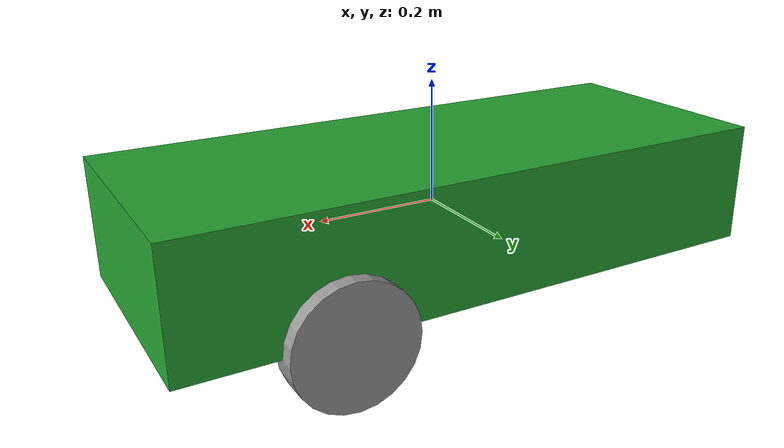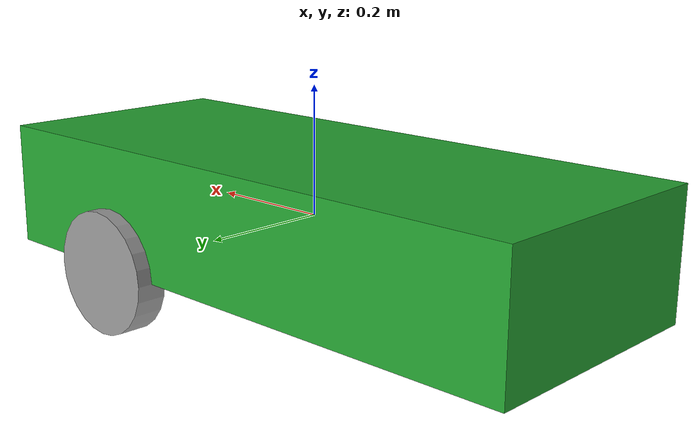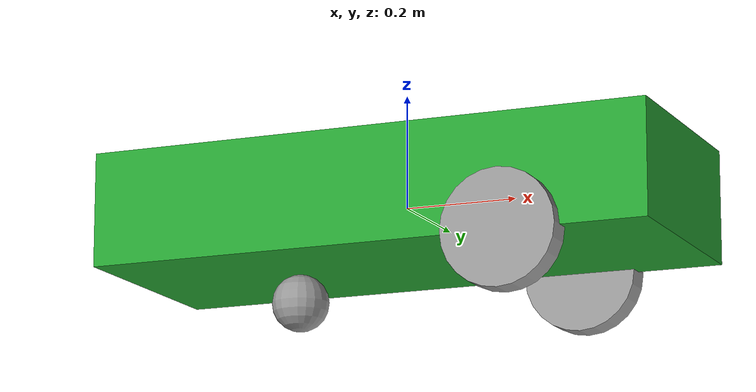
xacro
<?xml version="1.0"?>
<robot xmlns:xacro = "http://www.ros.org/wiki/xacro">
    <xacro:property name="base_length" value="1.0"/>
    <xacro:property name="base_width" value="0.4"/>
    <xacro:property name="base_height" value="0.2"/>
    <xacro:property name="wheel_radius" value="0.1"/>
    <xacro:property name="wheel_length" value="0.05"/>
    <xacro:property name="castor_radius" value="0.05"/>

    <link name="base_footprint" />
    <link name="base_link">
        <visual>
            <geometry>
                <box size="${base_length} ${base_width} ${base_height}"/>
            </geometry>
            <origin xyz="0 0 ${base_height/2.0}" rpy="0 0 0"/>
            <material name="green">
            </material>
        </visual>
    </link>

    <xacro:macro name="wheel_link" params="suffix">
        <link name="wheel_${suffix}">
            <visual>
                <geometry>
                    <cylinder radius="${wheel_radius}" length="${wheel_length}"/>
                </geometry>
                <origin xyz="0 0 0" rpy="${pi/2.0} 0 0"/>
                <material name="grey">
                </material>
            </visual>
        </link>
    </xacro:macro>
    <xacro:wheel_link suffix="1" />
    <xacro:wheel_link suffix="2" />

    <link name="castorlink">
        <visual>
            <geometry>
                <sphere radius="${castor_radius}" />
            </geometry>
            <origin xyz="0 0 0" rpy="0 0 0"/>
            <material name="grey">
            </material>
        </visual>
    </link>

    <joint name="my_robot_wheel1" type="continuous">
        <parent link="base_link" />
        <child link="wheel_1" />
        <origin xyz="${base_length /4.0} ${base_width /2.0} 0" rpy="0 0 0" />
        <axis xyz="0 1 0" />
        <limit effort="100" velocity="100" />
    </joint>
    <joint name="my_robot_wheel2" type="continuous">
        <parent link="base_link" />
        <child link="wheel_2" />
        <origin xyz="${base_length /4.0} ${-base_width /2.0} 0" rpy="0 0 0" />
        <axis xyz="0 1 0" />
        <limit effort="100" velocity="100" />
    </joint>
    <joint name="my_robot_castor_wheel" type="fixed">
        <parent link="base_link" />
        <child link="castorlink" />
        <origin xyz="${-base_width /2.0} 0 ${-castor_radius}"/>
    </joint>
    <joint name="base_joint" type="fixed">
        <parent link="base_footprint" />
        <child link="base_link" />
        <origin xyz="0 0 -0.1" rpy="0 0 0" />
    </joint>

</robot>
